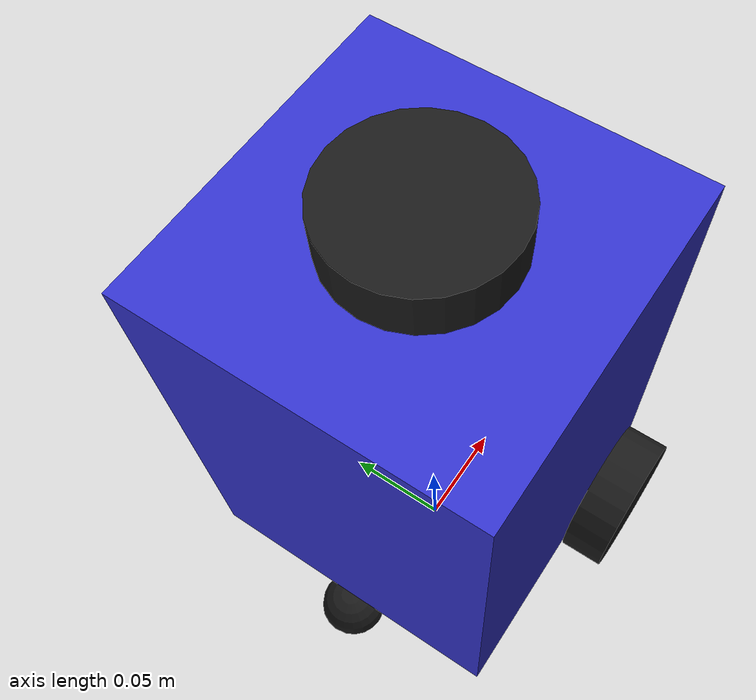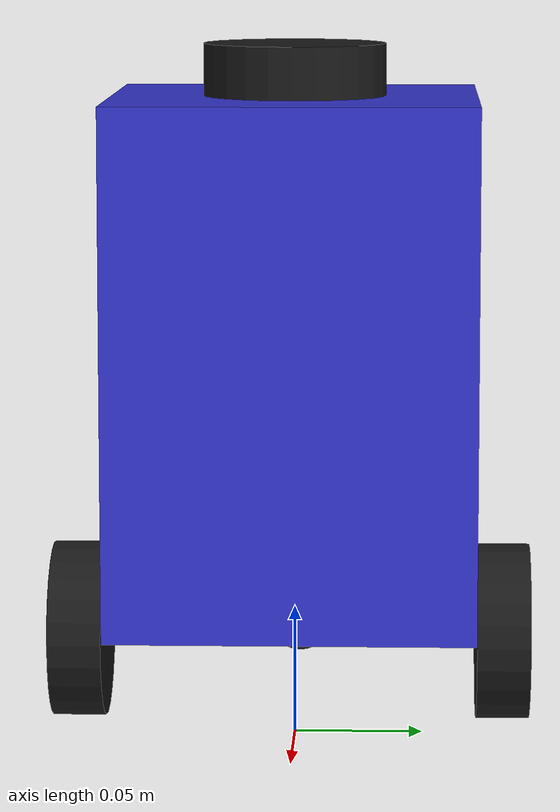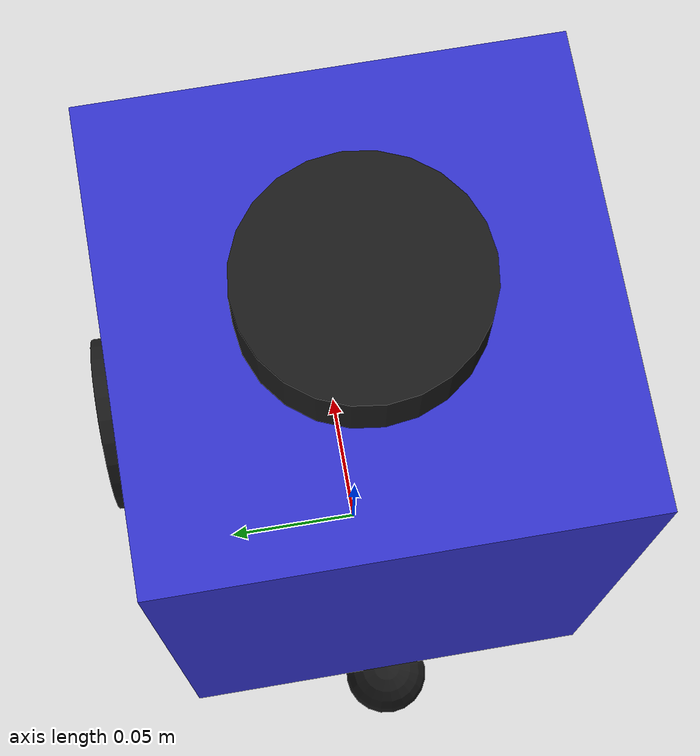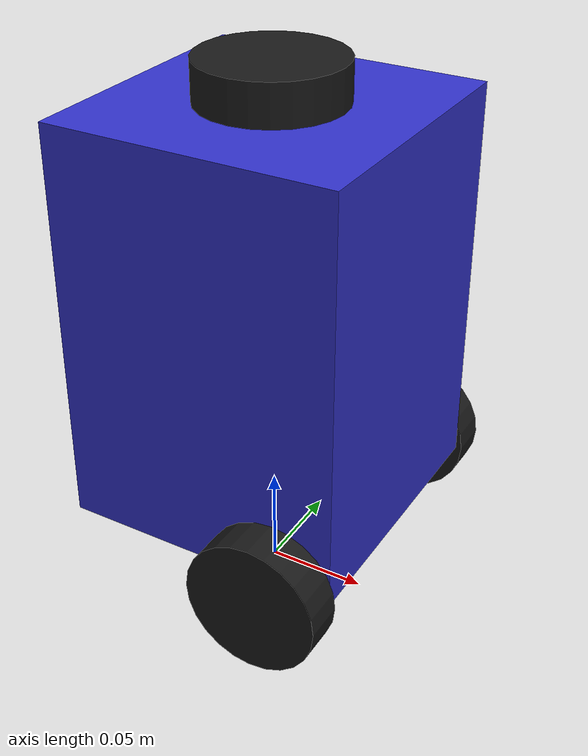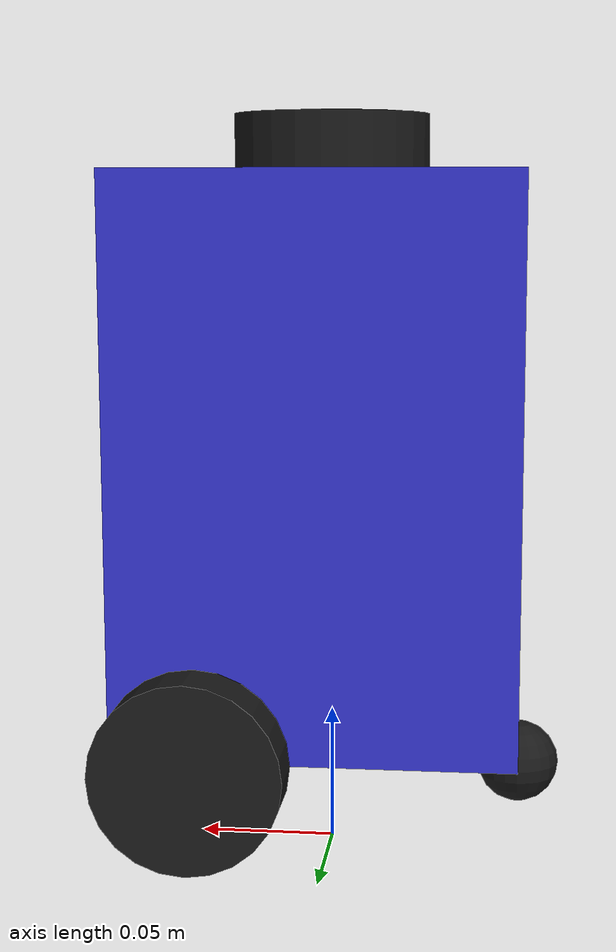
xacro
<?xml version="1.0"?>
<robot xmlns:xacro="http://www.ros.org/wiki/xacro" name="turtlebot_burger">

    <!-- MATERIALE -->
    <material name="black"><color rgba="0.1 0.1 0.1 1"/></material>
    <material name="blue"><color rgba="0.2 0.2 0.8 1"/></material>

    <!-- LINK DE BAZĂ -->
    <link name="base_link"/>

    <joint name="base_joint" type="fixed">
        <parent link="base_link"/>
        <child link="chassis"/>
        <origin xyz="0 0 0.05" rpy="0 0 0"/>
    </joint>

    <!-- STRUCTURA MECANICĂ (Șasiul) -->
    <link name="chassis">
        <visual>
            <origin xyz="0 0 0.10" rpy="0 0 0"/>
            <geometry><box size="0.14 0.14 0.20"/></geometry>
            <material name="blue"/>
        </visual>
        <collision>
            <origin xyz="0 0 0.10" rpy="0 0 0"/>
            <geometry><box size="0.14 0.14 0.20"/></geometry>
        </collision>
        <inertial>
            <!-- Centrul de greutate  -->
            <origin xyz="-0.02 0 0.03" rpy="0 0 0"/>
            <mass value="1.0"/>
            <inertia ixx="0.0049" ixy="0.0" ixz="0.0" iyy="0.0049" iyz="0.0" izz="0.0032"/>
        </inertial>
    </link>

    <!-- ROATA STÂNGĂ -->
    <joint name="left_wheel_joint" type="continuous">
        <parent link="chassis"/>
        <child link="left_wheel"/>
        <origin xyz="0.04 0.08 0" rpy="-1.5708 0 0"/>
        <axis xyz="0 0 1"/>
    </joint>

    <link name="left_wheel">
        <visual>
            <geometry><cylinder radius="0.033" length="0.02"/></geometry>
            <material name="black"/>
        </visual>
        <collision>
            <geometry><cylinder radius="0.033" length="0.02"/></geometry>
        </collision>
        <inertial>
            <mass value="0.05"/>
            <inertia ixx="0.0001" ixy="0" ixz="0" iyy="0.0001" iyz="0" izz="0.0001"/>
        </inertial>
    </link>

    <!-- ROATA DREAPTĂ -->
    <joint name="right_wheel_joint" type="continuous">
        <parent link="chassis"/>
        <child link="right_wheel"/>
        <origin xyz="0.04 -0.08 0" rpy="-1.5708 0 0"/>
        <axis xyz="0 0 1"/>
    </joint>

    <link name="right_wheel">
        <visual>
            <geometry><cylinder radius="0.033" length="0.02"/></geometry>
            <material name="black"/>
        </visual>
        <collision>
            <geometry><cylinder radius="0.033" length="0.02"/></geometry>
        </collision>
        <inertial>
            <mass value="0.05"/>
            <inertia ixx="0.0001" ixy="0" ixz="0" iyy="0.0001" iyz="0" izz="0.0001"/>
        </inertial>
    </link>

    <!-- ROATA DE SPRIJIN (Caster Wheel) -->
    <joint name="caster_joint" type="fixed">
        <parent link="chassis"/>
        <child link="caster_wheel"/>
        <origin xyz="-0.07 0 -0.018" rpy="0 0 0"/>
    </joint>

    <link name="caster_wheel">
        <visual>
            <geometry><sphere radius="0.015"/></geometry>
            <material name="black"/>
        </visual>
        <collision>
            <geometry><sphere radius="0.015"/></geometry>
        </collision>
        <inertial>
            <mass value="0.05"/>
            <inertia ixx="0.0001" ixy="0" ixz="0" iyy="0.0001" iyz="0" izz="0.0001"/>
        </inertial>
    </link>

    <!-- SENZORUL LIDAR -->
    <joint name="lidar_joint" type="fixed">
        <parent link="chassis"/>
        <child link="laser_frame"/>

        <origin xyz="0 0 0.20" rpy="0 0 0"/>
    </joint>

    <link name="laser_frame">
        <visual>
            <geometry><cylinder radius="0.035" length="0.04"/></geometry>
            <material name="black"/>
        </visual>
    </link>

    <!-- PLUGIN-URILE GAZEBO       -->

    <gazebo>
        <plugin filename="gz-sim-diff-drive-system" name="gz::sim::systems::DiffDrive">
            <left_joint>left_wheel_joint</left_joint>
            <right_joint>right_wheel_joint</right_joint>
            <wheel_separation>0.160</wheel_separation>
            <wheel_radius>0.033</wheel_radius>

            <max_linear_velocity>0.25</max_linear_velocity>
            <max_angular_velocity>0.8</max_angular_velocity>
            <max_linear_acceleration>0.3</max_linear_acceleration>
            <max_angular_acceleration>0.5</max_angular_acceleration>

            <topic>/cmd_vel</topic>
            <odom_topic>/odom</odom_topic>
            <tf_topic>/tf</tf_topic>
            <frame_id>odom</frame_id>
            <child_frame_id>base_link</child_frame_id>
            <odom_publish_frequency>30</odom_publish_frequency>
        </plugin>

        <plugin filename="gz-sim-joint-state-publisher-system" name="gz::sim::systems::JointStatePublisher">
            <topic>/joint_states</topic>
            <joint_name>left_wheel_joint</joint_name>
            <joint_name>right_wheel_joint</joint_name>
        </plugin>
    </gazebo>

    <gazebo reference="caster_wheel">
        <mu1>0.0</mu1>
        <mu2>0.0</mu2>
    </gazebo>

    <gazebo reference="laser_frame">
        <sensor name="lidar" type="gpu_lidar">

            <topic>/scan</topic>
            <update_rate>10</update_rate>
            <gz_frame_id>laser_frame</gz_frame_id>
            <ray>
                <scan>
                    <horizontal>
                        <samples>360</samples>
                        <resolution>1</resolution>
                        <min_angle>-3.14159</min_angle>
                        <max_angle>3.14159</max_angle>
                    </horizontal>
                </scan>
                <range>
                    <min>0.15</min>
                    <max>8.0</max>
                    <resolution>0.01</resolution>
                </range>
            </ray>
            <always_on>1</always_on>
            <visualize>true</visualize>
        </sensor>
    </gazebo>
    <!-- MOTORUL DE SENZORI (Obligatoriu pentru Lidar) -->
    <gazebo>
        <plugin filename="gz-sim-sensors-system" name="gz::sim::systems::Sensors">
            <render_engine>ogre2</render_engine>
        </plugin>
    </gazebo>
</robot>
